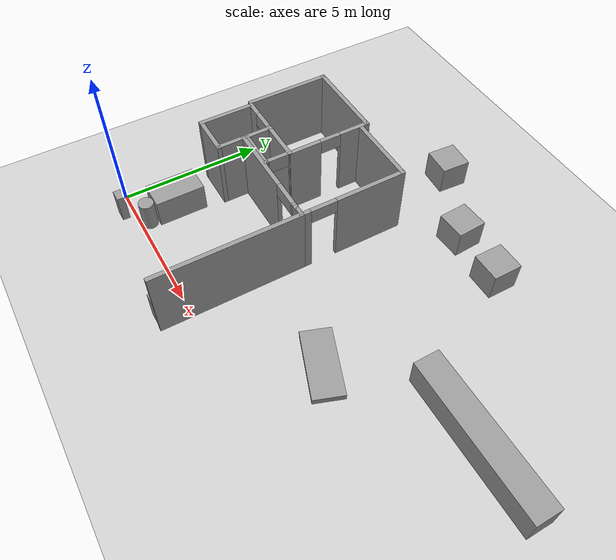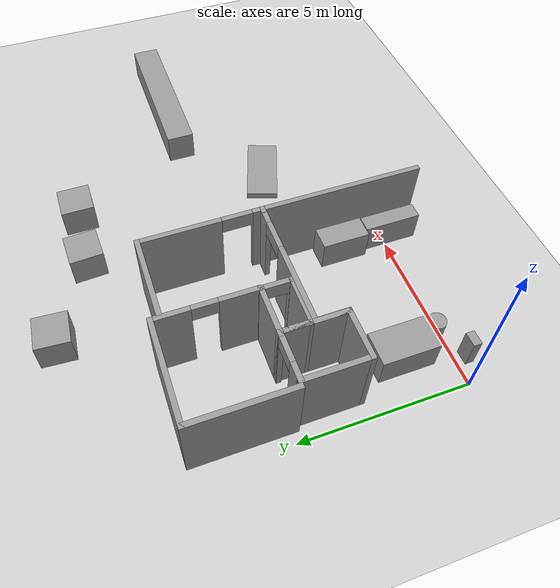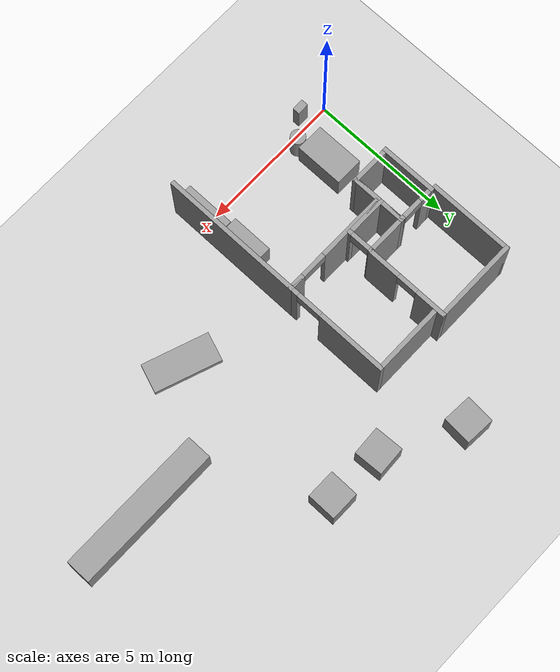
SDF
<sdf version="1.9">
 <world name="default">
  <model name="ground_plane">
   <static>true</static>
   <link name="link">
    <collision name="collision">
     <geometry><plane><normal>0 0 1</normal><size>100 100</size></plane></geometry>
     <surface><friction><ode><mu>100</mu><mu2>50</mu2></ode></friction></surface>
    </collision>
    <visual name="visual">
     <cast_shadows>false</cast_shadows>
     <geometry><plane><normal>0 0 1</normal><size>100 100</size></plane></geometry>
     <material>
      <script><uri>file://media/materials/scripts/gazebo.material</uri><name>Gazebo/Grey</name></script>
     </material>
    </visual>
   </link>
  </model>
  <model name="cma_L5">
   <pose>3.77502 1.45512 0 0 0 0</pose>
   <link name="Wall_0">
    <collision name="Wall_0_Collision">
     <geometry><box><size>1 0.14999999999999999 2.5</size></box></geometry>
     <pose>0 0 1.25 0 0 0</pose>
    </collision>
    <visual name="Wall_0_Visual">
     <pose>0 0 1.25 0 0 0</pose>
     <geometry><box><size>1 0.14999999999999999 2.5</size></box></geometry>
     <material>
      <script><uri>file://media/materials/scripts/gazebo.material</uri><name>Gazebo/Grey</name></script>
      <ambient>1 1 1 1</ambient>
     </material>
    </visual>
    <pose>-1.925 2 0 0 0 1.5708</pose>
   </link>
   <link name="Wall_1">
    <pose>0 2.4249999999999998 0 0 0 0</pose>
    <visual name="Wall_1_Visual_0">
     <pose>-0.75249999999999995 0 1.25 0 0 0</pose>
     <geometry><box><size>2.4950000000000001 0.14999999999999999 2.5</size></box></geometry>
     <material>
      <script><uri>file://media/materials/scripts/gazebo.material</uri><name>Gazebo/Grey</name></script>
      <ambient>1 1 1 1</ambient>
     </material>
    </visual>
    <collision name="Wall_1_Collision_0">
     <geometry><box><size>2.4950000000000001 0.14999999999999999 2.5</size></box></geometry>
     <pose>-0.75249999999999995 0 1.25 0 0 0</pose>
    </collision>
    <visual name="Wall_1_Visual_1">
     <pose>1.6975 0 1.25 0 0 0</pose>
     <geometry><box><size>0.60499999999999998 0.14999999999999999 2.5</size></box></geometry>
     <material>
      <script><uri>file://media/materials/scripts/gazebo.material</uri><name>Gazebo/Grey</name></script>
      <ambient>1 1 1 1</ambient>
     </material>
    </visual>
    <collision name="Wall_1_Collision_1">
     <geometry><box><size>0.60499999999999998 0.14999999999999999 2.5</size></box></geometry>
     <pose>1.6975 0 1.25 0 0 0</pose>
    </collision>
    <visual name="Wall_1_Visual_2">
     <pose>0.94499999999999995 0 2.25 0 0 0</pose>
     <geometry><box><size>0.90000000000000002 0.14999999999999999 0.5</size></box></geometry>
     <material>
      <script><uri>file://media/materials/scripts/gazebo.material</uri><name>Gazebo/Grey</name></script>
      <ambient>1 1 1 1</ambient>
     </material>
    </visual>
    <collision name="Wall_1_Collision_2">
     <geometry><box><size>0.90000000000000002 0.14999999999999999 0.5</size></box></geometry>
     <pose>0.94499999999999995 0 2.25 0 0 0</pose>
    </collision>
   </link>
   <link name="Wall_3">
    <collision name="Wall_3_Collision">
     <geometry><box><size>5 0.14999999999999999 2.5</size></box></geometry>
     <pose>0 0 1.25 0 0 0</pose>
    </collision>
    <visual name="Wall_3_Visual">
     <pose>0 0 1.25 0 0 0</pose>
     <geometry><box><size>5 0.14999999999999999 2.5</size></box></geometry>
     <material>
      <script><uri>file://media/materials/scripts/gazebo.material</uri><name>Gazebo/Grey</name></script>
      <ambient>1 1 1 1</ambient>
     </material>
    </visual>
    <pose>1.925 0 0 0 0 -1.5708</pose>
   </link>
   <static>true</static>
  </model>
  <model name="cma_dispensa">
   <pose>2.5258400000000001 4.4011899999999997 0 0 0 0</pose>
   <link name="Wall_5">
    <collision name="Wall_5_Collision">
     <geometry><box><size>1 0.14999999999999999 2.5</size></box></geometry>
     <pose>0 0 1.25 0 0 0</pose>
    </collision>
    <visual name="Wall_5_Visual">
     <pose>0 0 1.25 0 0 0</pose>
     <geometry><box><size>1 0.14999999999999999 2.5</size></box></geometry>
     <material>
      <script><uri>file://media/materials/scripts/gazebo.material</uri><name>Gazebo/Grey</name></script>
      <ambient>1 1 1 1</ambient>
     </material>
    </visual>
    <pose>-0.67500000000000004 0 0 0 0 1.5708</pose>
   </link>
   <link name="Wall_6">
    <collision name="Wall_6_Collision">
     <geometry><box><size>1.5 0.14999999999999999 2.5</size></box></geometry>
     <pose>0 0 1.25 0 0 0</pose>
    </collision>
    <visual name="Wall_6_Visual">
     <pose>0 0 1.25 0 0 0</pose>
     <geometry><box><size>1.5 0.14999999999999999 2.5</size></box></geometry>
     <material>
      <script><uri>file://media/materials/scripts/gazebo.material</uri><name>Gazebo/Grey</name></script>
      <ambient>1 1 1 1</ambient>
     </material>
    </visual>
    <pose>0 0.42499999999999999 0 0 0 0</pose>
   </link>
   <link name="Wall_7">
    <pose>0.67500000000000004 0 0 0 0 -1.5708</pose>
    <visual name="Wall_7_Visual_0">
     <pose>-0.42749999999999999 0 1.25 0 0 0</pose>
     <geometry><box><size>0.14499999999999999 0.14999999999999999 2.5</size></box></geometry>
     <material>
      <script><uri>file://media/materials/scripts/gazebo.material</uri><name>Gazebo/Grey</name></script>
      <ambient>1 1 1 1</ambient>
     </material>
    </visual>
    <collision name="Wall_7_Collision_0">
     <geometry><box><size>0.14499999999999999 0.14999999999999999 2.5</size></box></geometry>
     <pose>-0.42749999999999999 0 1.25 0 0 0</pose>
    </collision>
    <visual name="Wall_7_Visual_1">
     <pose>0.42249999999999999 0 1.25 0 0 0</pose>
     <geometry><box><size>0.155 0.14999999999999999 2.5</size></box></geometry>
     <material>
      <script><uri>file://media/materials/scripts/gazebo.material</uri><name>Gazebo/Grey</name></script>
      <ambient>1 1 1 1</ambient>
     </material>
    </visual>
    <collision name="Wall_7_Collision_1">
     <geometry><box><size>0.155 0.14999999999999999 2.5</size></box></geometry>
     <pose>0.42249999999999999 0 1.25 0 0 0</pose>
    </collision>
    <visual name="Wall_7_Visual_2">
     <pose>-0.0050000000000000001 0 2.25 0 0 0</pose>
     <geometry><box><size>0.69999999999999996 0.14999999999999999 0.5</size></box></geometry>
     <material>
      <script><uri>file://media/materials/scripts/gazebo.material</uri><name>Gazebo/Grey</name></script>
      <ambient>1 1 1 1</ambient>
     </material>
    </visual>
    <collision name="Wall_7_Collision_2">
     <geometry><box><size>0.69999999999999996 0.14999999999999999 0.5</size></box></geometry>
     <pose>-0.0050000000000000001 0 2.25 0 0 0</pose>
    </collision>
   </link>
   <link name="Wall_8">
    <collision name="Wall_8_Collision">
     <geometry><box><size>1.5 0.14999999999999999 2.5</size></box></geometry>
     <pose>0 0 1.25 0 0 0</pose>
    </collision>
    <visual name="Wall_8_Visual">
     <pose>0 0 1.25 0 0 0</pose>
     <geometry><box><size>1.5 0.14999999999999999 2.5</size></box></geometry>
     <material>
      <script><uri>file://media/materials/scripts/gazebo.material</uri><name>Gazebo/Grey</name></script>
      <ambient>1 1 1 1</ambient>
     </material>
    </visual>
    <pose>0 -0.42499999999999999 0 0 0 3.1415899999999999</pose>
   </link>
   <static>true</static>
  </model>
  <model name="cma_banheiro_e">
   <pose>1.1835800000000001 3.89879 0 0 0 0</pose>
   <link name="Wall_10">
    <collision name="Wall_10_Collision">
     <geometry><box><size>1.5 0.14999999999999999 2.5</size></box></geometry>
     <pose>0 0 1.25 0 0 0</pose>
    </collision>
    <visual name="Wall_10_Visual">
     <pose>0 0 1.25 0 0 0</pose>
     <geometry><box><size>1.5 0.14999999999999999 2.5</size></box></geometry>
     <material>
      <script><uri>file://media/materials/scripts/gazebo.material</uri><name>Gazebo/Grey</name></script>
      <ambient>1 1 1 1</ambient>
     </material>
    </visual>
    <pose>0 -0.92500000000000004 0 0 0 3.1415899999999999</pose>
   </link>
   <link name="Wall_11">
    <collision name="Wall_11_Collision">
     <geometry><box><size>2 0.14999999999999999 2.5</size></box></geometry>
     <pose>0 0 1.25 0 0 0</pose>
    </collision>
    <visual name="Wall_11_Visual">
     <pose>0 0 1.25 0 0 0</pose>
     <geometry><box><size>2 0.14999999999999999 2.5</size></box></geometry>
     <material>
      <script><uri>file://media/materials/scripts/gazebo.material</uri><name>Gazebo/Grey</name></script>
      <ambient>1 1 1 1</ambient>
     </material>
    </visual>
    <pose>-0.67500000000000004 0 0 0 0 1.5708</pose>
   </link>
   <link name="Wall_12">
    <pose>0 0.92500000000000004 0 0 0 0</pose>
    <visual name="Wall_12_Visual_0">
     <pose>-0.46250000000000002 0 1.25 0 0 0</pose>
     <geometry><box><size>0.57499999999999996 0.14999999999999999 2.5</size></box></geometry>
     <material>
      <script><uri>file://media/materials/scripts/gazebo.material</uri><name>Gazebo/Grey</name></script>
      <ambient>1 1 1 1</ambient>
     </material>
    </visual>
    <collision name="Wall_12_Collision_0">
     <geometry><box><size>0.57499999999999996 0.14999999999999999 2.5</size></box></geometry>
     <pose>-0.46250000000000002 0 1.25 0 0 0</pose>
    </collision>
    <visual name="Wall_12_Visual_1">
     <pose>0.64749999999999996 0 1.25 0 0 0</pose>
     <geometry><box><size>0.20499999999999999 0.14999999999999999 2.5</size></box></geometry>
     <material>
      <script><uri>file://media/materials/scripts/gazebo.material</uri><name>Gazebo/Grey</name></script>
      <ambient>1 1 1 1</ambient>
     </material>
    </visual>
    <collision name="Wall_12_Collision_1">
     <geometry><box><size>0.20499999999999999 0.14999999999999999 2.5</size></box></geometry>
     <pose>0.64749999999999996 0 1.25 0 0 0</pose>
    </collision>
    <visual name="Wall_12_Visual_2">
     <pose>0.185 0 2.25 0 0 0</pose>
     <geometry><box><size>0.71999999999999997 0.14999999999999999 0.5</size></box></geometry>
     <material>
      <script><uri>file://media/materials/scripts/gazebo.material</uri><name>Gazebo/Grey</name></script>
      <ambient>1 1 1 1</ambient>
     </material>
    </visual>
    <collision name="Wall_12_Collision_2">
     <geometry><box><size>0.71999999999999997 0.14999999999999999 0.5</size></box></geometry>
     <pose>0.185 0 2.25 0 0 0</pose>
    </collision>
   </link>
   <link name="Wall_13">
    <collision name="Wall_13_Collision">
     <geometry><box><size>2 0.14999999999999999 2.5</size></box></geometry>
     <pose>0 0 1.25 0 0 0</pose>
    </collision>
    <visual name="Wall_13_Visual">
     <pose>0 0 1.25 0 0 0</pose>
     <geometry><box><size>2 0.14999999999999999 2.5</size></box></geometry>
     <material>
      <script><uri>file://media/materials/scripts/gazebo.material</uri><name>Gazebo/Grey</name></script>
      <ambient>1 1 1 1</ambient>
     </material>
    </visual>
    <pose>0.67500000000000004 0 0 0 0 -1.5708</pose>
   </link>
   <static>true</static>
  </model>
  <model name="cma_qe">
   <pose>1.79922 6.3014200000000002 0 0 0 0</pose>
   <link name="Wall_15">
    <collision name="Wall_15_Collision">
     <geometry><box><size>3 0.14999999999999999 2.5</size></box></geometry>
     <pose>0 0 1.25 0 0 0</pose>
    </collision>
    <visual name="Wall_15_Visual">
     <pose>0 0 1.25 0 0 0</pose>
     <geometry><box><size>3 0.14999999999999999 2.5</size></box></geometry>
     <material>
      <script><uri>file://media/materials/scripts/gazebo.material</uri><name>Gazebo/Grey</name></script>
      <ambient>1 1 1 1</ambient>
     </material>
    </visual>
    <pose>-1.425 0 0 0 0 1.5708</pose>
   </link>
   <link name="Wall_16">
    <collision name="Wall_16_Collision">
     <geometry><box><size>3 0.14999999999999999 2.5</size></box></geometry>
     <pose>0 0 1.25 0 0 0</pose>
    </collision>
    <visual name="Wall_16_Visual">
     <pose>0 0 1.25 0 0 0</pose>
     <geometry><box><size>3 0.14999999999999999 2.5</size></box></geometry>
     <material>
      <script><uri>file://media/materials/scripts/gazebo.material</uri><name>Gazebo/Grey</name></script>
      <ambient>1 1 1 1</ambient>
     </material>
    </visual>
    <pose>0 1.425 0 0 0 0</pose>
   </link>
   <link name="Wall_17">
    <pose>1.425 0 0 0 0 -1.5708</pose>
    <visual name="Wall_17_Visual_0">
     <pose>-0.94499999999999995 0 1.25 0 0 0</pose>
     <geometry><box><size>1.1100000000000001 0.14999999999999999 2.5</size></box></geometry>
     <material>
      <script><uri>file://media/materials/scripts/gazebo.material</uri><name>Gazebo/Grey</name></script>
      <ambient>1 1 1 1</ambient>
     </material>
    </visual>
    <collision name="Wall_17_Collision_0">
     <geometry><box><size>1.1100000000000001 0.14999999999999999 2.5</size></box></geometry>
     <pose>-0.94499999999999995 0 1.25 0 0 0</pose>
    </collision>
    <visual name="Wall_17_Visual_1">
     <pose>0.92000000000000004 0 1.25 0 0 0</pose>
     <geometry><box><size>1.1599999999999999 0.14999999999999999 2.5</size></box></geometry>
     <material>
      <script><uri>file://media/materials/scripts/gazebo.material</uri><name>Gazebo/Grey</name></script>
      <ambient>1 1 1 1</ambient>
     </material>
    </visual>
    <collision name="Wall_17_Collision_1">
     <geometry><box><size>1.1599999999999999 0.14999999999999999 2.5</size></box></geometry>
     <pose>0.92000000000000004 0 1.25 0 0 0</pose>
    </collision>
    <visual name="Wall_17_Visual_2">
     <pose>-0.025000000000000001 0 2.25 0 0 0</pose>
     <geometry><box><size>0.72999999999999998 0.14999999999999999 0.5</size></box></geometry>
     <material>
      <script><uri>file://media/materials/scripts/gazebo.material</uri><name>Gazebo/Grey</name></script>
      <ambient>1 1 1 1</ambient>
     </material>
    </visual>
    <collision name="Wall_17_Collision_2">
     <geometry><box><size>0.72999999999999998 0.14999999999999999 0.5</size></box></geometry>
     <pose>-0.025000000000000001 0 2.25 0 0 0</pose>
    </collision>
   </link>
   <static>true</static>
  </model>
  <model name="cma_area2">
   <pose>4.5227500000000003 5.6786199999999996 0 0 0 0</pose>
   <link name="Wall_23">
    <collision name="Wall_23_Collision">
     <geometry><box><size>2.5 0.14999999999999999 2.5</size></box></geometry>
     <pose>0 0 1.25 0 0 0</pose>
    </collision>
    <visual name="Wall_23_Visual">
     <pose>0 0 1.25 0 0 0</pose>
     <geometry><box><size>2.5 0.14999999999999999 2.5</size></box></geometry>
     <material>
      <script><uri>file://media/materials/scripts/gazebo.material</uri><name>Gazebo/Grey</name></script>
      <ambient>1 1 1 1</ambient>
     </material>
    </visual>
    <pose>0 1.8 0 0 0 0</pose>
   </link>
   <link name="Wall_24">
    <pose>1.175 0 0 0 0 -1.5708</pose>
    <visual name="Wall_24_Visual_0">
     <pose>-0.64249999999999996 0 1.25 0 0 0</pose>
     <geometry><box><size>2.4649999999999999 0.14999999999999999 2.5</size></box></geometry>
     <material>
      <script><uri>file://media/materials/scripts/gazebo.material</uri><name>Gazebo/Grey</name></script>
      <ambient>1 1 1 1</ambient>
     </material>
    </visual>
    <collision name="Wall_24_Collision_0">
     <geometry><box><size>2.4649999999999999 0.14999999999999999 2.5</size></box></geometry>
     <pose>-0.64249999999999996 0 1.25 0 0 0</pose>
    </collision>
    <visual name="Wall_24_Visual_1">
     <pose>1.6825000000000001 0 1.25 0 0 0</pose>
     <geometry><box><size>0.38500000000000001 0.14999999999999999 2.5</size></box></geometry>
     <material>
      <script><uri>file://media/materials/scripts/gazebo.material</uri><name>Gazebo/Grey</name></script>
      <ambient>1 1 1 1</ambient>
     </material>
    </visual>
    <collision name="Wall_24_Collision_1">
     <geometry><box><size>0.38500000000000001 0.14999999999999999 2.5</size></box></geometry>
     <pose>1.6825000000000001 0 1.25 0 0 0</pose>
    </collision>
    <visual name="Wall_24_Visual_2">
     <pose>1.04 0 2.25 0 0 0</pose>
     <geometry><box><size>0.90000000000000002 0.14999999999999999 0.5</size></box></geometry>
     <material>
      <script><uri>file://media/materials/scripts/gazebo.material</uri><name>Gazebo/Grey</name></script>
      <ambient>1 1 1 1</ambient>
     </material>
    </visual>
    <collision name="Wall_24_Collision_2">
     <geometry><box><size>0.90000000000000002 0.14999999999999999 0.5</size></box></geometry>
     <pose>1.04 0 2.25 0 0 0</pose>
    </collision>
   </link>
   <link name="Wall_25">
    <collision name="Wall_25_Collision">
     <geometry><box><size>0.5 0.14999999999999999 2.5</size></box></geometry>
     <pose>0 0 1.25 0 0 0</pose>
    </collision>
    <visual name="Wall_25_Visual">
     <pose>0 0 1.25 0 0 0</pose>
     <geometry><box><size>0.5 0.14999999999999999 2.5</size></box></geometry>
     <material>
      <script><uri>file://media/materials/scripts/gazebo.material</uri><name>Gazebo/Grey</name></script>
      <ambient>1 1 1 1</ambient>
     </material>
    </visual>
    <pose>1 -1.8 0 0 0 3.1415899999999999</pose>
   </link>
   <static>true</static>
  </model>
  <model name="cma_picador_0">
   <link name="link_2">
    <pose>-0.7258 -1.6910400000000001 0 0 0 0</pose>
    <inertial>
     <mass>0.10473200000000001</mass>
     <inertia>
      <ixx>0.0092790600000000004</ixx>
      <ixy>0</ixy>
      <ixz>0</ixz>
      <iyy>0.010243</iyy>
      <iyz>0</iyz>
      <izz>0.0020667200000000002</izz>
     </inertia>
    </inertial>
    <visual name="visual">
     <geometry><box><size>0.416688 0.25134000000000001 1</size></box></geometry>
     <material>
      <lighting>true</lighting>
      <script><uri>file://media/materials/scripts/gazebo.material</uri><name>Gazebo/Grey</name></script>
      <ambient>0.300000012 0.300000012 0.300000012 1</ambient>
      <diffuse>0.699999988 0.699999988 0.699999988 1</diffuse>
      <specular>0.00999999978 0.00999999978 0.00999999978 1</specular>
      <emissive>0 0 0 1</emissive>
     </material>
    </visual>
    <collision name="collision">
     <geometry><box><size>0.416688 0.25134000000000001 1</size></box></geometry>
     <surface>
      <friction>
       <ode><mu>1</mu><mu2>1</mu2><fdir1>0 0 0</fdir1><slip1>0</slip1><slip2>0</slip2></ode>
       <torsional>
        <coefficient>1</coefficient>
        <patch_radius>0</patch_radius>
        <surface_radius>0</surface_radius>
        <use_patch_radius>true</use_patch_radius>
        <ode><slip>0</slip></ode>
       </torsional>
      </friction>
      <bounce><restitution_coefficient>0</restitution_coefficient><threshold>1000000</threshold></bounce>
      <contact>
       <collide_without_contact>false</collide_without_contact>
       <collide_without_contact_bitmask>1</collide_without_contact_bitmask>
       <collide_bitmask>1</collide_bitmask>
       <ode>
        <soft_cfm>0</soft_cfm>
        <soft_erp>0.20000000000000001</soft_erp>
        <kp>10000000000000</kp>
        <kd>1</kd>
        <max_vel>0.01</max_vel>
        <min_depth>0</min_depth>
       </ode>
       <bullet>
        <split_impulse>true</split_impulse>
        <split_impulse_penetration_threshold>-0.01</split_impulse_penetration_threshold>
        <soft_cfm>0</soft_cfm>
        <soft_erp>0.20000000000000001</soft_erp>
        <kp>10000000000000</kp>
        <kd>1</kd>
       </bullet>
      </contact>
     </surface>
    </collision>
   </link>
   <static>false</static>
   <pose>1.47418 1.359 0.50000800000000001 3.999999999999999e-06 -3.999999999999999e-06 0.0077160000000000006</pose>
  </model>
  <model name="cma_cesto">
   <link name="link_1">
    <pose>-0.32965899999999998 -1.55494 0 0 0 0</pose>
    <inertial>
     <mass>0.267897</mass>
     <inertia>
      <ixx>0.026810199999999999</ixx>
      <ixy>0</ixy>
      <ixz>0</ixz>
      <iyy>0.026810199999999999</iyy>
      <iyz>0</iyz>
      <izz>0.0089711099999999992</izz>
     </inertia>
    </inertial>
    <visual name="visual">
     <geometry><cylinder><radius>0.25879200000000002</radius><length>1</length></cylinder></geometry>
     <material>
      <lighting>true</lighting>
      <script><uri>file://media/materials/scripts/gazebo.material</uri><name>Gazebo/Grey</name></script>
      <ambient>0.300000012 0.300000012 0.300000012 1</ambient>
      <diffuse>0.699999988 0.699999988 0.699999988 1</diffuse>
      <specular>0.00999999978 0.00999999978 0.00999999978 1</specular>
      <emissive>0 0 0 1</emissive>
     </material>
    </visual>
    <collision name="collision">
     <geometry><cylinder><radius>0.25879200000000002</radius><length>1</length></cylinder></geometry>
     <surface>
      <friction>
       <ode><mu>1</mu><mu2>1</mu2><fdir1>0 0 0</fdir1><slip1>0</slip1><slip2>0</slip2></ode>
       <torsional>
        <coefficient>1</coefficient>
        <patch_radius>0</patch_radius>
        <surface_radius>0</surface_radius>
        <use_patch_radius>true</use_patch_radius>
        <ode><slip>0</slip></ode>
       </torsional>
      </friction>
      <bounce><restitution_coefficient>0</restitution_coefficient><threshold>1000000</threshold></bounce>
      <contact>
       <collide_without_contact>false</collide_without_contact>
       <collide_without_contact_bitmask>1</collide_without_contact_bitmask>
       <collide_bitmask>1</collide_bitmask>
       <ode>
        <soft_cfm>0</soft_cfm>
        <soft_erp>0.20000000000000001</soft_erp>
        <kp>10000000000000</kp>
        <kd>1</kd>
        <max_vel>0.01</max_vel>
        <min_depth>0</min_depth>
       </ode>
       <bullet>
        <split_impulse>true</split_impulse>
        <split_impulse_penetration_threshold>-0.01</split_impulse_penetration_threshold>
        <soft_cfm>0</soft_cfm>
        <soft_erp>0.20000000000000001</soft_erp>
        <kp>10000000000000</kp>
        <kd>1</kd>
       </bullet>
      </contact>
     </surface>
    </collision>
   </link>
   <static>false</static>
   <pose>1.9109700000000001 1.85863 0.49999199999999999 0 0 -0.013204999999999998</pose>
  </model>
  <model name="cma_sofa_2_lugares">
   <link name="link_0">
    <pose>-0.034013000000000002 -0.039828000000000002 0 0 0 0</pose>
    <inertial>
     <mass>1.6607099999999999</mass>
     <inertia>
      <ixx>0.53818299999999997</ixx>
      <ixy>0</ixy>
      <ixz>0</ixz>
      <iyy>0.27051900000000001</iyy>
      <iyz>0</iyz>
      <izz>0.53191500000000003</izz>
     </inertia>
    </inertial>
    <visual name="visual">
     <geometry><box><size>0.97714699999999999 1.6996800000000001 1</size></box></geometry>
     <material>
      <lighting>true</lighting>
      <script><uri>file://media/materials/scripts/gazebo.material</uri><name>Gazebo/Grey</name></script>
      <ambient>0.300000012 0.300000012 0.300000012 1</ambient>
      <diffuse>0.699999988 0.699999988 0.699999988 1</diffuse>
      <specular>0.00999999978 0.00999999978 0.00999999978 1</specular>
      <emissive>0 0 0 1</emissive>
     </material>
    </visual>
    <collision name="collision">
     <geometry><box><size>0.97714699999999999 1.6996800000000001 1</size></box></geometry>
     <surface>
      <friction>
       <ode><mu>1</mu><mu2>1</mu2><fdir1>0 0 0</fdir1><slip1>0</slip1><slip2>0</slip2></ode>
       <torsional>
        <coefficient>1</coefficient>
        <patch_radius>0</patch_radius>
        <surface_radius>0</surface_radius>
        <use_patch_radius>true</use_patch_radius>
        <ode><slip>0</slip></ode>
       </torsional>
      </friction>
      <bounce><restitution_coefficient>0</restitution_coefficient><threshold>1000000</threshold></bounce>
      <contact>
       <collide_without_contact>false</collide_without_contact>
       <collide_without_contact_bitmask>1</collide_without_contact_bitmask>
       <collide_bitmask>1</collide_bitmask>
       <ode>
        <soft_cfm>0</soft_cfm>
        <soft_erp>0.20000000000000001</soft_erp>
        <kp>10000000000000</kp>
        <kd>1</kd>
        <max_vel>0.01</max_vel>
        <min_depth>0</min_depth>
       </ode>
       <bullet>
        <split_impulse>true</split_impulse>
        <split_impulse_penetration_threshold>-0.01</split_impulse_penetration_threshold>
        <soft_cfm>0</soft_cfm>
        <soft_erp>0.20000000000000001</soft_erp>
        <kp>10000000000000</kp>
        <kd>1</kd>
       </bullet>
      </contact>
     </surface>
    </collision>
   </link>
   <static>false</static>
   <pose>1.36456 1.47289 0.49999900000000003 2.5849394142333812e-26 -2.0000000000000003e-06 -8.500000000000002e-05</pose>
  </model>
  <model name="cma_geladeira">
   <link name="link_2">
    <pose>3.0000000000000001e-06 -3.9999999999999998e-06 0 0 0 0</pose>
    <inertial>
     <mass>0.994085</mass>
     <inertia>
      <ixx>0.258405</ixx>
      <ixy>0</ixy>
      <ixz>0</ixz>
      <iyy>0.12146800000000001</iyy>
      <iyz>0</iyz>
      <izz>0.21419199999999999</izz>
     </inertia>
    </inertial>
    <visual name="visual">
     <geometry><box><size>0.68284400000000001 1.4557899999999999 1</size></box></geometry>
     <material>
      <lighting>true</lighting>
      <script><uri>file://media/materials/scripts/gazebo.material</uri><name>Gazebo/Grey</name></script>
      <ambient>0.300000012 0.300000012 0.300000012 1</ambient>
      <diffuse>0.699999988 0.699999988 0.699999988 1</diffuse>
      <specular>0.00999999978 0.00999999978 0.00999999978 1</specular>
      <emissive>0 0 0 1</emissive>
     </material>
    </visual>
    <collision name="collision">
     <geometry><box><size>0.68284400000000001 1.4557899999999999 1</size></box></geometry>
     <surface>
      <friction>
       <ode><mu>1</mu><mu2>1</mu2><fdir1>0 0 0</fdir1><slip1>0</slip1><slip2>0</slip2></ode>
       <torsional>
        <coefficient>1</coefficient>
        <patch_radius>0</patch_radius>
        <surface_radius>0</surface_radius>
        <use_patch_radius>true</use_patch_radius>
        <ode><slip>0</slip></ode>
       </torsional>
      </friction>
      <bounce><restitution_coefficient>0</restitution_coefficient><threshold>1000000</threshold></bounce>
      <contact>
       <collide_without_contact>false</collide_without_contact>
       <collide_without_contact_bitmask>1</collide_without_contact_bitmask>
       <collide_bitmask>1</collide_bitmask>
       <ode>
        <soft_cfm>0</soft_cfm>
        <soft_erp>0.20000000000000001</soft_erp>
        <kp>10000000000000</kp>
        <kd>1</kd>
        <max_vel>0.01</max_vel>
        <min_depth>0</min_depth>
       </ode>
       <bullet>
        <split_impulse>true</split_impulse>
        <split_impulse_penetration_threshold>-0.01</split_impulse_penetration_threshold>
        <soft_cfm>0</soft_cfm>
        <soft_erp>0.20000000000000001</soft_erp>
        <kp>10000000000000</kp>
        <kd>1</kd>
       </bullet>
      </contact>
     </surface>
    </collision>
   </link>
   <static>false</static>
   <pose>5.2195799999999997 1.4773400000000001 0.49999700000000002 -1.0339757657243718e-25 -8.0000000000000013e-06 0.00014099999999999998</pose>
  </model>
  <model name="cma_armario_coz_190x40cm">
   <link name="link_3">
    <pose>-3.0000000000000001e-06 9.9999999999999995e-07 0 0 0 0</pose>
    <inertial>
     <mass>0.84861799999999998</mass>
     <inertia>
      <ixx>0.28876000000000002</ixx>
      <ixy>0</ixy>
      <ixz>0</ixz>
      <iyy>0.087235900000000005</iyy>
      <iyz>0</iyz>
      <izz>0.23455899999999999</izz>
     </inertia>
    </inertial>
    <visual name="visual">
     <geometry><box><size>0.48330099999999998 1.7559199999999999 1</size></box></geometry>
     <material>
      <lighting>true</lighting>
      <script><uri>file://media/materials/scripts/gazebo.material</uri><name>Gazebo/Grey</name></script>
      <ambient>0.300000012 0.300000012 0.300000012 1</ambient>
      <diffuse>0.699999988 0.699999988 0.699999988 1</diffuse>
      <specular>0.00999999978 0.00999999978 0.00999999978 1</specular>
      <emissive>0 0 0 1</emissive>
     </material>
    </visual>
    <collision name="collision">
     <geometry><box><size>0.48330099999999998 1.7559199999999999 1</size></box></geometry>
     <surface>
      <friction>
       <ode><mu>1</mu><mu2>1</mu2><fdir1>0 0 0</fdir1><slip1>0</slip1><slip2>0</slip2></ode>
       <torsional>
        <coefficient>1</coefficient>
        <patch_radius>0</patch_radius>
        <surface_radius>0</surface_radius>
        <use_patch_radius>true</use_patch_radius>
        <ode><slip>0</slip></ode>
       </torsional>
      </friction>
      <bounce><restitution_coefficient>0</restitution_coefficient><threshold>1000000</threshold></bounce>
      <contact>
       <collide_without_contact>false</collide_without_contact>
       <collide_without_contact_bitmask>1</collide_without_contact_bitmask>
       <collide_bitmask>1</collide_bitmask>
       <ode>
        <soft_cfm>0</soft_cfm>
        <soft_erp>0.20000000000000001</soft_erp>
        <kp>10000000000000</kp>
        <kd>1</kd>
        <max_vel>0.01</max_vel>
        <min_depth>0</min_depth>
       </ode>
       <bullet>
        <split_impulse>true</split_impulse>
        <split_impulse_penetration_threshold>-0.01</split_impulse_penetration_threshold>
        <soft_cfm>0</soft_cfm>
        <soft_erp>0.20000000000000001</soft_erp>
        <kp>10000000000000</kp>
        <kd>1</kd>
       </bullet>
      </contact>
     </surface>
    </collision>
   </link>
   <static>false</static>
   <pose>5.2976599999999996 -0.147672 0.49999700000000002 -3.0000000000000001e-06 1.9999999999999995e-06 -0.000102</pose>
  </model>
  <model name="unit_box_0">
   <pose>9.2107200000000002 2.5829900000000001 0.111886 1.5707800000000001 0 -0.34969299999999998</pose>
   <link name="link">
    <inertial>
     <mass>1</mass>
     <inertia>
      <ixx>0.16666700000000001</ixx>
      <ixy>0</ixy>
      <ixz>0</ixz>
      <iyy>0.16666700000000001</iyy>
      <iyz>0</iyz>
      <izz>0.16666700000000001</izz>
     </inertia>
    </inertial>
    <collision name="collision"><geometry><box><size>2.29356 0.223787 1</size></box></geometry></collision>
    <visual name="visual">
     <geometry><box><size>2.29356 0.223787 1</size></box></geometry>
     <material>
      <script><name>Gazebo/Grey</name><uri>file://media/materials/scripts/gazebo.material</uri></script>
     </material>
    </visual>
   </link>
  </model>
  <model name="unit_box_1">
   <pose>13.389099999999999 4.9661 0.49767299999999998 -1.3234895304870441e-23 0.00091200000000000027 -0.00016000000000000001</pose>
   <link name="link">
    <inertial>
     <mass>1</mass>
     <inertia>
      <ixx>0.16666700000000001</ixx>
      <ixy>0</ixy>
      <ixz>0</ixz>
      <iyy>0.16666700000000001</iyy>
      <iyz>0</iyz>
      <izz>0.16666700000000001</izz>
     </inertia>
    </inertial>
    <collision name="collision"><geometry><box><size>5.10196 0.867936 1</size></box></geometry></collision>
    <visual name="visual">
     <geometry><box><size>5.10196 0.867936 1</size></box></geometry>
     <material>
      <script><name>Gazebo/Grey</name><uri>file://media/materials/scripts/gazebo.material</uri></script>
     </material>
    </visual>
   </link>
  </model>
  <model name="unit_box_2">
   <pose>7.2786099999999996 8.9395600000000002 0.49999399999999999 -1.5708 -1.0000000000006665e-05 -3.09023</pose>
   <link name="link">
    <inertial>
     <mass>1</mass>
     <inertia>
      <ixx>0.16666700000000001</ixx>
      <ixy>0</ixy>
      <ixz>0</ixz>
      <iyy>0.16666700000000001</iyy>
      <iyz>0</iyz>
      <izz>0.16666700000000001</izz>
     </inertia>
    </inertial>
    <collision name="collision"><geometry><box><size>1 0.999998 1</size></box></geometry></collision>
    <visual name="visual">
     <geometry><box><size>1 0.999998 1</size></box></geometry>
     <material>
      <script><name>Gazebo/Grey</name><uri>file://media/materials/scripts/gazebo.material</uri></script>
     </material>
    </visual>
   </link>
  </model>
  <model name="unit_box_3">
   <pose>9.1893600000000006 8.8434000000000008 0.49999500000000002 -1.5708 9.9999999998991124e-06 1.5685199999999999</pose>
   <link name="link">
    <inertial>
     <mass>1</mass>
     <inertia>
      <ixx>0.16666700000000001</ixx>
      <ixy>0</ixy>
      <ixz>0</ixz>
      <iyy>0.16666700000000001</iyy>
      <iyz>0</iyz>
      <izz>0.16666700000000001</izz>
     </inertia>
    </inertial>
    <collision name="collision"><geometry><box><size>1 1 1</size></box></geometry></collision>
    <visual name="visual">
     <geometry><box><size>1 1 1</size></box></geometry>
     <material>
      <script><name>Gazebo/Grey</name><uri>file://media/materials/scripts/gazebo.material</uri></script>
     </material>
    </visual>
   </link>
  </model>
  <model name="unit_box_4">
   <pose>4.7410800000000002 10.2608 0.49999900000000003 0 0 -0.066732</pose>
   <link name="link">
    <inertial>
     <mass>1</mass>
     <inertia>
      <ixx>0.16666700000000001</ixx>
      <ixy>0</ixy>
      <ixz>0</ixz>
      <iyy>0.16666700000000001</iyy>
      <iyz>0</iyz>
      <izz>0.16666700000000001</izz>
     </inertia>
    </inertial>
    <collision name="collision"><geometry><box><size>0.999995 1 0.999998</size></box></geometry></collision>
    <visual name="visual">
     <geometry><box><size>0.999995 1 0.999998</size></box></geometry>
     <material>
      <script><name>Gazebo/Grey</name><uri>file://media/materials/scripts/gazebo.material</uri></script>
     </material>
    </visual>
   </link>
  </model>
 </world>
</sdf>
